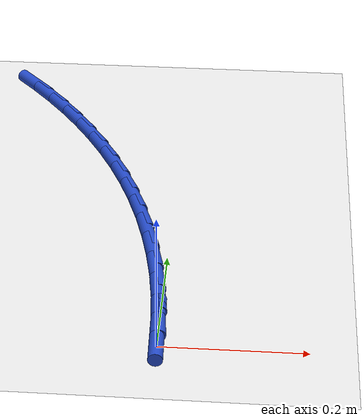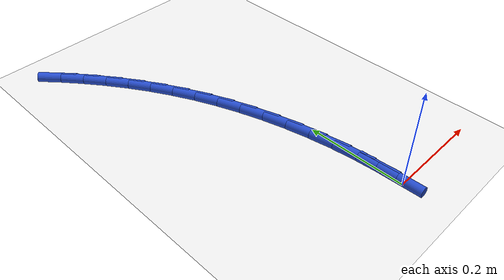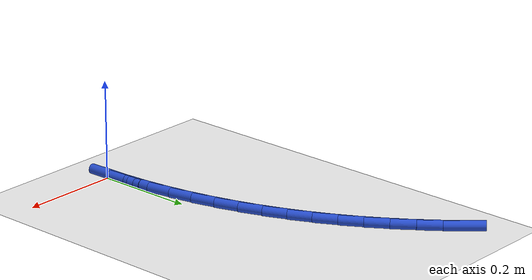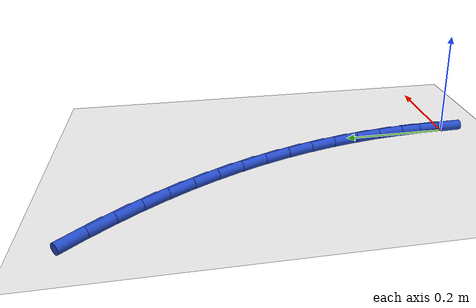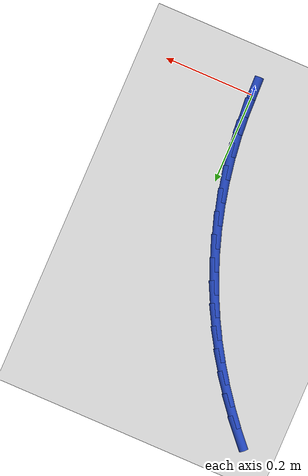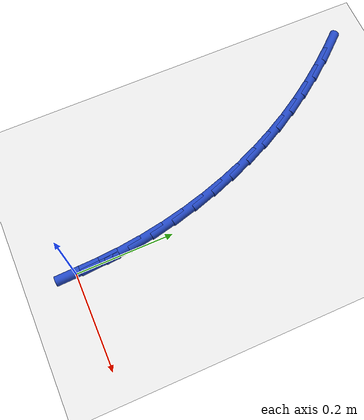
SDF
<sdf version="1.6">
 <world name="default">
  <model name="ground_plane">
   <static>1</static>
   <link name="link">
    <collision name="collision">
     <geometry><plane><normal>0 0 1</normal><size>100 100</size></plane></geometry>
     <surface><friction><ode><mu>100</mu><mu2>50</mu2></ode></friction></surface>
    </collision>
    <visual name="visual">
     <cast_shadows>0</cast_shadows>
     <geometry><plane><normal>0 0 1</normal><size>100 100</size></plane></geometry>
     <material>
      <script><uri>file://media/materials/scripts/gazebo.material</uri><name>Gazebo/WhiteGlow</name></script>
     </material>
    </visual>
   </link>
  </model>
  <model name="line">
   <link name="link_1">
    <pose>-0.0015824500909776397 0.05013335404957283 0.01 0 1.57 -1.4899112611273708</pose>
    <collision name="collision">
     <geometry><cylinder><radius>0.01</radius><length>0.08</length></cylinder></geometry>
    </collision>
    <visual name="visual">
     <material>
      <script><name>Gazebo/Blue</name><uri>file://media/materials/scripts/gazebo.material</uri></script>
     </material>
     <geometry><cylinder><radius>0.01</radius><length>0.08</length></cylinder></geometry>
    </visual>
   </link>
   <link name="link_2">
    <pose>-0.005628785693399329 0.10004995456834834 0.01 0 1.57 -1.441327607142462</pose>
    <collision name="collision">
     <geometry><cylinder><radius>0.01</radius><length>0.08</length></cylinder></geometry>
    </collision>
    <visual name="visual">
     <material>
      <script><name>Gazebo/Blue</name><uri>file://media/materials/scripts/gazebo.material</uri></script>
     </material>
     <geometry><cylinder><radius>0.01</radius><length>0.08</length></cylinder></geometry>
    </visual>
   </link>
   <link name="link_3">
    <pose>-0.012081902913729146 0.14961421103972397 0.01 0 1.57 -1.393314175987291</pose>
    <collision name="collision">
     <geometry><cylinder><radius>0.01</radius><length>0.08</length></cylinder></geometry>
    </collision>
    <visual name="visual">
     <material>
      <script><name>Gazebo/Blue</name><uri>file://media/materials/scripts/gazebo.material</uri></script>
     </material>
     <geometry><cylinder><radius>0.01</radius><length>0.08</length></cylinder></geometry>
    </visual>
   </link>
   <link name="link_4">
    <pose>-0.020884697858431205 0.19869053294709701 0.01 0 1.57 -1.3456842124285278</pose>
    <collision name="collision">
     <geometry><cylinder><radius>0.01</radius><length>0.08</length></cylinder></geometry>
    </collision>
    <visual name="visual">
     <material>
      <script><name>Gazebo/Blue</name><uri>file://media/materials/scripts/gazebo.material</uri></script>
     </material>
     <geometry><cylinder><radius>0.01</radius><length>0.08</length></cylinder></geometry>
    </visual>
   </link>
   <link name="link_5">
    <pose>-0.031980066633969635 0.24714332977386483 0.01 0 1.57 -1.2982424886802975</pose>
    <collision name="collision">
     <geometry><cylinder><radius>0.01</radius><length>0.08</length></cylinder></geometry>
    </collision>
    <visual name="visual">
     <material>
      <script><name>Gazebo/Blue</name><uri>file://media/materials/scripts/gazebo.material</uri></script>
     </material>
     <geometry><cylinder><radius>0.01</radius><length>0.08</length></cylinder></geometry>
    </visual>
   </link>
   <link name="link_6">
    <pose>-0.04531090534680854 0.29483701100342474 0.01 0 1.57 -1.2507863105780639</pose>
    <collision name="collision">
     <geometry><cylinder><radius>0.01</radius><length>0.08</length></cylinder></geometry>
    </collision>
    <visual name="visual">
     <material>
      <script><name>Gazebo/Blue</name><uri>file://media/materials/scripts/gazebo.material</uri></script>
     </material>
     <geometry><cylinder><radius>0.01</radius><length>0.08</length></cylinder></geometry>
    </visual>
   </link>
   <link name="link_7">
    <pose>-0.06082011010341201 0.3416359861191741 0.01 0 1.57 -1.2031062376416208</pose>
    <collision name="collision">
     <geometry><cylinder><radius>0.01</radius><length>0.08</length></cylinder></geometry>
    </collision>
    <visual name="visual">
     <material>
      <script><name>Gazebo/Blue</name><uri>file://media/materials/scripts/gazebo.material</uri></script>
     </material>
     <geometry><cylinder><radius>0.01</radius><length>0.08</length></cylinder></geometry>
    </visual>
   </link>
   <link name="link_8">
    <pose>-0.07845057701024422 0.3874046646045103 0.01 0 1.57 -1.1549866741841799</pose>
    <collision name="collision">
     <geometry><cylinder><radius>0.01</radius><length>0.08</length></cylinder></geometry>
    </collision>
    <visual name="visual">
     <material>
      <script><name>Gazebo/Blue</name><uri>file://media/materials/scripts/gazebo.material</uri></script>
     </material>
     <geometry><cylinder><radius>0.01</radius><length>0.08</length></cylinder></geometry>
    </visual>
   </link>
   <link name="link_9">
    <pose>-0.09814520217376921 0.43200745594283047 0.01 0 1.57 -1.1064393421343046</pose>
    <collision name="collision">
     <geometry><cylinder><radius>0.01</radius><length>0.08</length></cylinder></geometry>
    </collision>
    <visual name="visual">
     <material>
      <script><name>Gazebo/Blue</name><uri>file://media/materials/scripts/gazebo.material</uri></script>
     </material>
     <geometry><cylinder><radius>0.01</radius><length>0.08</length></cylinder></geometry>
    </visual>
   </link>
   <link name="link_10">
    <pose>-0.11984924948275016 0.4753386779965507 0.01 0 1.57 -1.0585171125424098</pose>
    <collision name="collision">
     <geometry><cylinder><radius>0.01</radius><length>0.08</length></cylinder></geometry>
    </collision>
    <visual name="visual">
     <material>
      <script><name>Gazebo/Blue</name><uri>file://media/materials/scripts/gazebo.material</uri></script>
     </material>
     <geometry><cylinder><radius>0.01</radius><length>0.08</length></cylinder></geometry>
    </visual>
   </link>
   <link name="link_11">
    <pose>-0.14351874961716266 0.5174286481549553 0.01 0 1.57 -1.0118368616197726</pose>
    <collision name="collision">
     <geometry><cylinder><radius>0.01</radius><length>0.08</length></cylinder></geometry>
    </collision>
    <visual name="visual">
     <material>
      <script><name>Gazebo/Blue</name><uri>file://media/materials/scripts/gazebo.material</uri></script>
     </material>
     <geometry><cylinder><radius>0.01</radius><length>0.08</length></cylinder></geometry>
    </visual>
   </link>
   <link name="link_12">
    <pose>-0.1691127919916613 0.5583463198745606 0.01 0 1.57 -0.966714887193477</pose>
    <collision name="collision">
     <geometry><cylinder><radius>0.01</radius><length>0.08</length></cylinder></geometry>
    </collision>
    <visual name="visual">
     <material>
      <script><name>Gazebo/Blue</name><uri>file://media/materials/scripts/gazebo.material</uri></script>
     </material>
     <geometry><cylinder><radius>0.01</radius><length>0.08</length></cylinder></geometry>
    </visual>
   </link>
   <link name="link_13">
    <pose>-0.1965904662309409 0.5981606492649827 0.01 0 1.57 -0.9234209997527437</pose>
    <collision name="collision">
     <geometry><cylinder><radius>0.01</radius><length>0.08</length></cylinder></geometry>
    </collision>
    <visual name="visual">
     <material>
      <script><name>Gazebo/Blue</name><uri>file://media/materials/scripts/gazebo.material</uri></script>
     </material>
     <geometry><cylinder><radius>0.01</radius><length>0.08</length></cylinder></geometry>
    </visual>
   </link>
   <link name="link_14">
    <pose>-0.22591086195969612 0.6369405924358381 0.01 0 1.57 -0.8821738849087701</pose>
    <collision name="collision">
     <geometry><cylinder><radius>0.01</radius><length>0.08</length></cylinder></geometry>
    </collision>
    <visual name="visual">
     <material>
      <script><name>Gazebo/Blue</name><uri>file://media/materials/scripts/gazebo.material</uri></script>
     </material>
     <geometry><cylinder><radius>0.01</radius><length>0.08</length></cylinder></geometry>
    </visual>
   </link>
   <link name="link_15">
    <pose>-0.2570330688026219 0.6747551054967431 0.01 0 1.57 -0.8431399966090858</pose>
    <collision name="collision">
     <geometry><cylinder><radius>0.01</radius><length>0.08</length></cylinder></geometry>
    </collision>
    <visual name="visual">
     <material>
      <script><name>Gazebo/Blue</name><uri>file://media/materials/scripts/gazebo.material</uri></script>
     </material>
     <geometry><cylinder><radius>0.01</radius><length>0.08</length></cylinder></geometry>
    </visual>
   </link>
   <link name="link_140">
    <pose>3.642919299551295e-17 1.8041124150158794e-16 0.01 0 1.57 -1.5390185575791118</pose>
    <collision name="collision">
     <geometry><cylinder><radius>0.01</radius><length>0.08</length></cylinder></geometry>
    </collision>
    <visual name="visual">
     <material>
      <script><name>Gazebo/Blue</name><uri>file://media/materials/scripts/gazebo.material</uri></script>
     </material>
     <geometry><cylinder><radius>0.01</radius><length>0.08</length></cylinder></geometry>
    </visual>
   </link>
   <link name="link_141">
    <pose>-0.0015933773135927611 0.050124378515218594 0.01 0 1.57 -1.539018557579112</pose>
    <collision name="collision">
     <geometry><cylinder><radius>0.01</radius><length>0.08</length></cylinder></geometry>
    </collision>
    <visual name="visual">
     <material>
      <script><name>Gazebo/Blue</name><uri>file://media/materials/scripts/gazebo.material</uri></script>
     </material>
     <geometry><cylinder><radius>0.01</radius><length>0.08</length></cylinder></geometry>
    </visual>
   </link>
  </model>
 </world>
</sdf>
